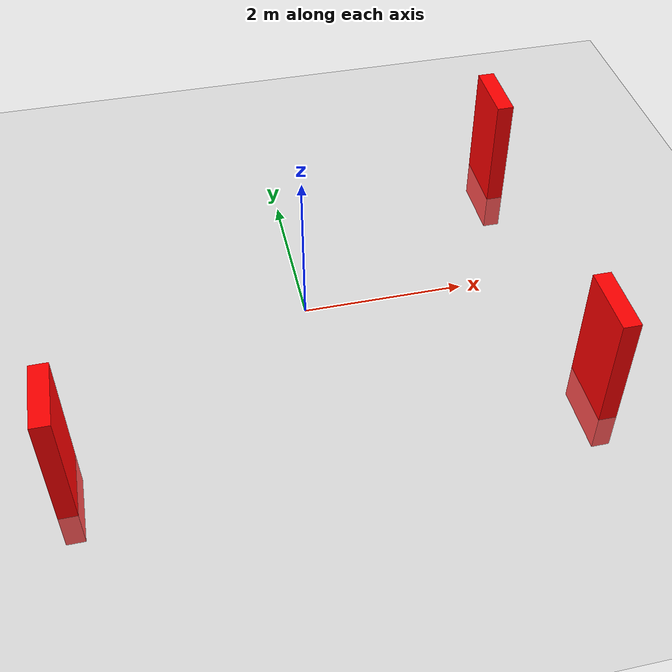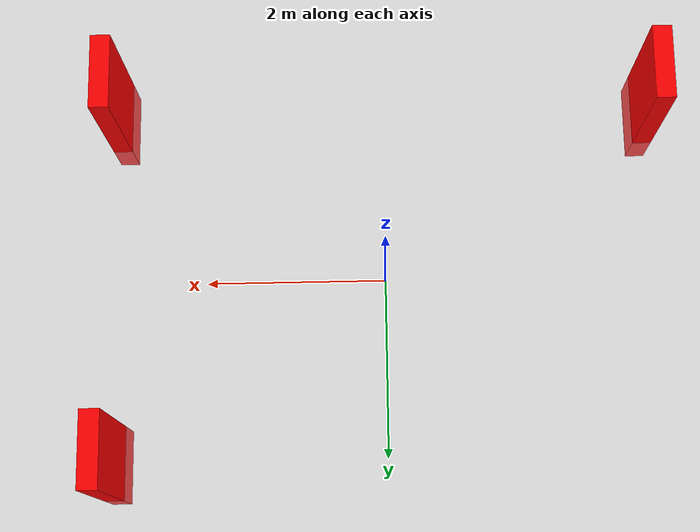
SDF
<sdf version="1.5">
    <world name="static_cafe">
      <gui>
        <camera name="user_camera">
          <pose>0 -18 8.0 0 0.523 1.5707</pose>
        </camera>
      </gui>
      <light name="sun" type="directional">
        <cast_shadows>1</cast_shadows>
        <pose>0 0 10 0 -0 0</pose>
        <diffuse>0.8 0.8 0.8 1</diffuse>
        <specular>0.2 0.2 0.2 1</specular>
        <attenuation>
          <range>1000</range>
          <constant>0.9</constant>
          <linear>0.01</linear>
          <quadratic>0.001</quadratic>
        </attenuation>
        <direction>0 0.5 -0.9</direction>
      </light>

      <light name="point_light" type="point">
        <pose>0 -0.377195 6.59868 0 -0 0</pose>
        <diffuse>0.784314 0.784314 0.784314 1</diffuse>
        <specular>0.0980392 0.0980392 0.0980392 1</specular>
        <attenuation>
          <range>50</range>
          <constant>0.8</constant>
          <linear>0</linear>
          <quadratic>0.001</quadratic>
        </attenuation>
        <cast_shadows>0</cast_shadows>
        <direction>0 0 -1</direction>
      </light>

      <include>
        <uri>model://ground_plane</uri>
      </include>

        <model name="box1">
            <pose>3 -2 0.5 0 0 0</pose>
            <link name="box1_link">
              <inertial>
                <inertia>
                  <ixx>0.16666</ixx>
                  <ixy>0</ixy>
                  <ixz>0</ixz>
                  <iyy>0.16666</iyy>
                  <iyz>0</iyz>
                  <izz>0.16666</izz>
                </inertia>
                <mass>1.0</mass>
              </inertial>
              <collision name="box1_collision">
                <geometry>
                  <box>
                    <size>0.213084 0.814315 2</size>
                  </box>
                </geometry>
              </collision>

              <visual name="box1_visual">
                <geometry>
                  <box>
                    <size>0.213084 0.814315 2</size>
                  </box>
                </geometry>
                <material>
                  <ambient>1 0 0 1</ambient>
                  <diffuse>1 0 0 1</diffuse>
                  <specular>1 0 0 1</specular>
                </material>
              </visual>
            </link>
        </model>

        <model name="box2">
            <pose>3 2 0.5 0 0 0</pose>
            <link name="box2_link">
              <inertial>
                <inertia>
                  <ixx>0.16666</ixx>
                  <ixy>0</ixy>
                  <ixz>0</ixz>
                  <iyy>0.16666</iyy>
                  <iyz>0</iyz>
                  <izz>0.16666</izz>
                </inertia>
                <mass>1.0</mass>
              </inertial>
              <collision name="box2_collision">
                <geometry>
                  <box>
                    <size>0.213084 0.814315 2</size>
                  </box>
                </geometry>
              </collision>

              <visual name="box2_visual">
                <geometry>
                  <box>
                    <size>0.213084 0.814315 2</size>
                  </box>
                </geometry>
                <material>
                  <ambient>1 0 0 1</ambient>
                  <diffuse>1 0 0 1</diffuse>
                  <specular>1 0 0 1</specular>
                </material>
              </visual>
            </link>
        </model>

        <model name="box3">
            <pose>-3 -2 0.5 0 0 0</pose>
            <link name="box3_link">
              <inertial>
                <inertia>
                  <ixx>0.16666</ixx>
                  <ixy>0</ixy>
                  <ixz>0</ixz>
                  <iyy>0.16666</iyy>
                  <iyz>0</iyz>
                  <izz>0.16666</izz>
                </inertia>
                <mass>1.0</mass>
              </inertial>
              <collision name="box3_collision">
                <geometry>
                  <box>
                    <size>0.213084 0.814315 2</size>
                  </box>
                </geometry>
              </collision>

              <visual name="box3_visual">
                <geometry>
                  <box>
                    <size>0.213084 0.814315 2</size>
                  </box>
                </geometry>
                <material>
                  <ambient>1 0 0 1</ambient>
                  <diffuse>1 0 0 1</diffuse>
                  <specular>1 0 0 1</specular>
                </material>
              </visual>
            </link>
        </model>

    </world>
  </sdf>
